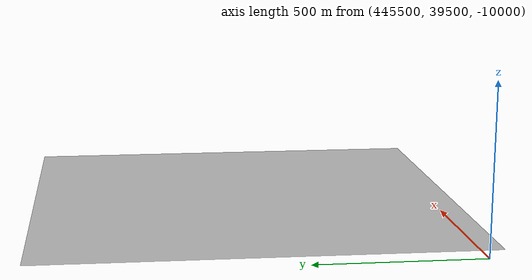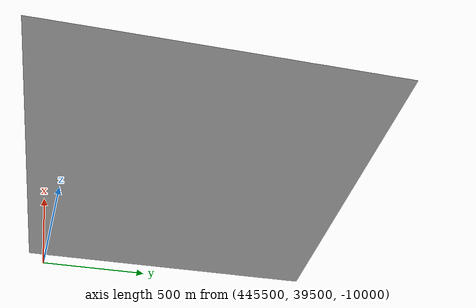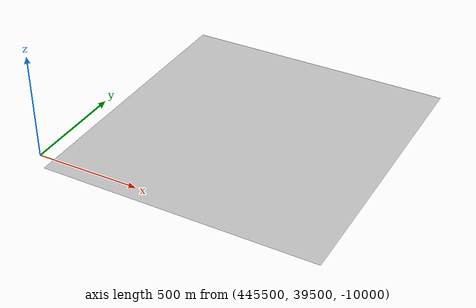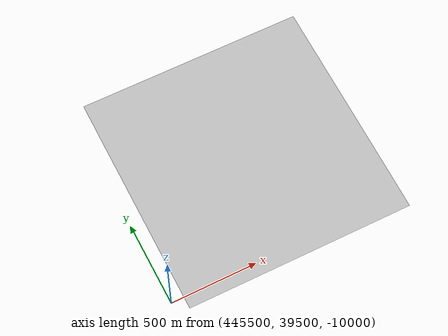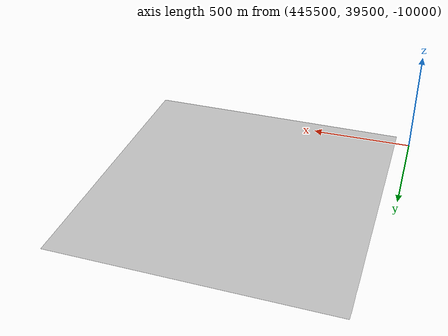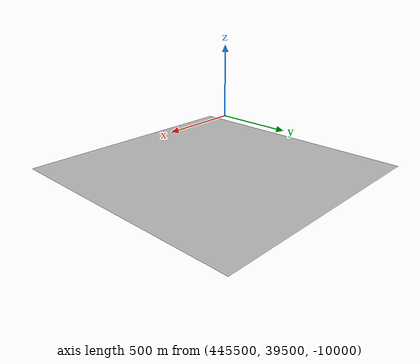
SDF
<?xml version="1.0" ?>
<sdf version="1.5">
  <model name="buzzbay.R_-71.150_-71.135_41.350_41.365">
    <static>true</static>
    <pose>0 0 0 0 0 0</pose>
    <self_collide>false</self_collide>
    <link name="terrain_link">
      <visual name="terrain_visual">
	<geometry>
	  <mesh>
	    <uri>model://buzzbay.R_-71.150_-71.135_41.350_41.365.epsg26987/meshes/buzzbay.R_-71.150_-71.135_41.350_41.365.epsg26987.obj</uri>
	    <scale>1 1 1</scale>
	  </mesh>
	</geometry>

	<material>
	  <script>
	    <uri>file://Media/materials/scripts/sand.material</uri>
	    <name>UUVSimulator/SandAndStones</name>
	  </script>
	</material>
      </visual>
      <collision name="collision">
	<geometry>
	  <mesh>
   	    <uri>model://buzzbay.R_-71.150_-71.135_41.350_41.365.epsg26987/meshes/buzzbay.R_-71.150_-71.135_41.350_41.365.epsg26987.obj</uri>
   	    <scale>1 1 1</scale>
	  </mesh>
	</geometry>
	<surface>
	  <contact>
            <collide_bitmask>0xffff</collide_bitmask>
	  </contact>
	</surface>
      </collision>
    </link>
  </model>
</sdf>
